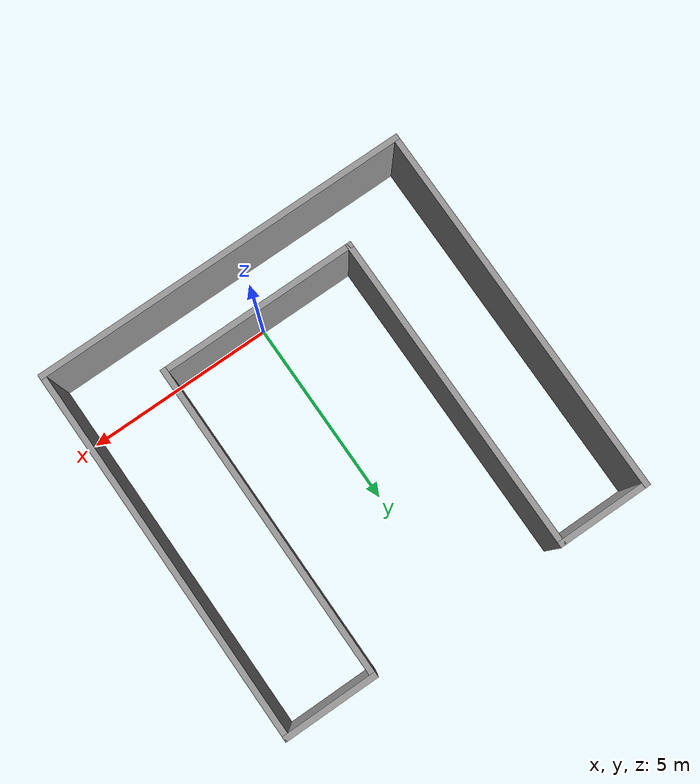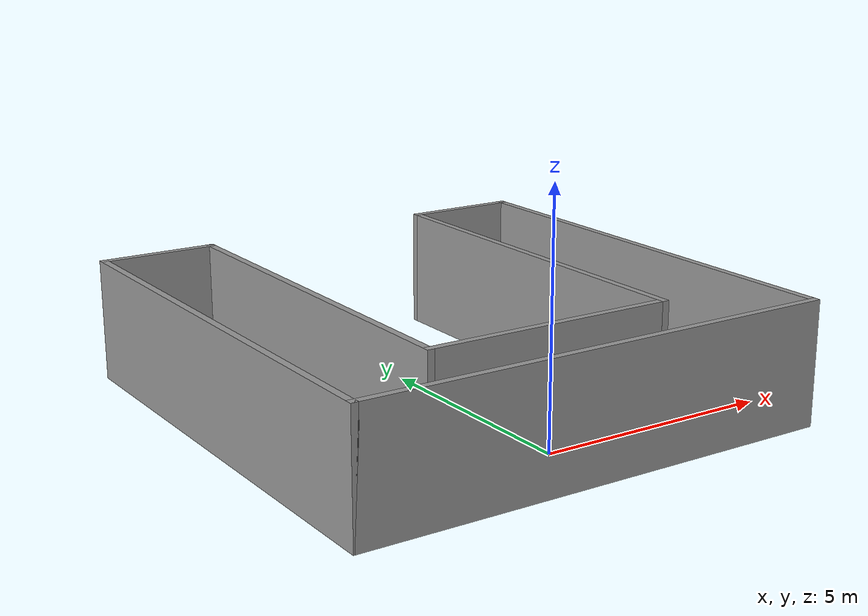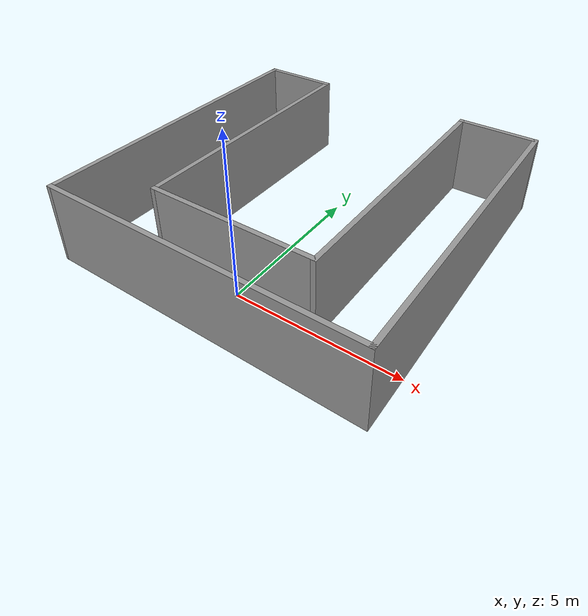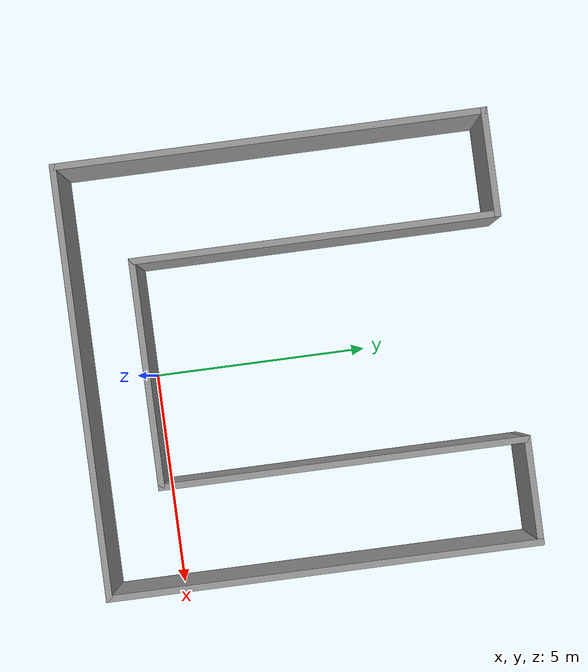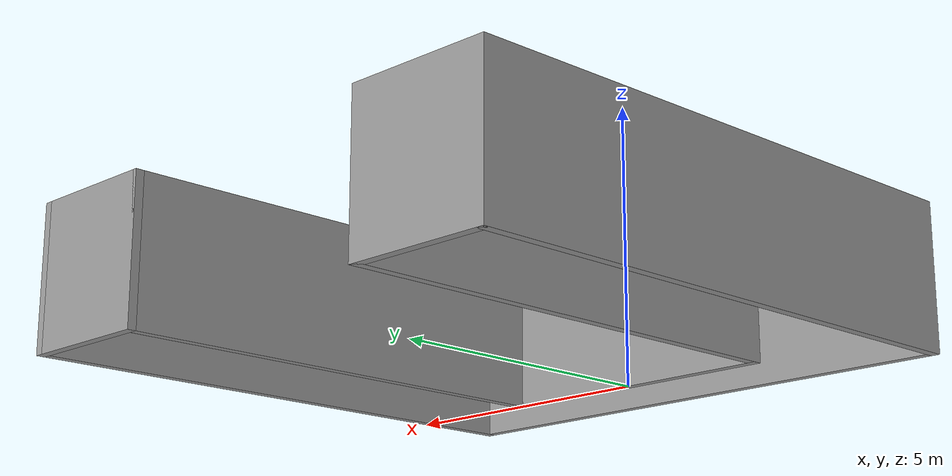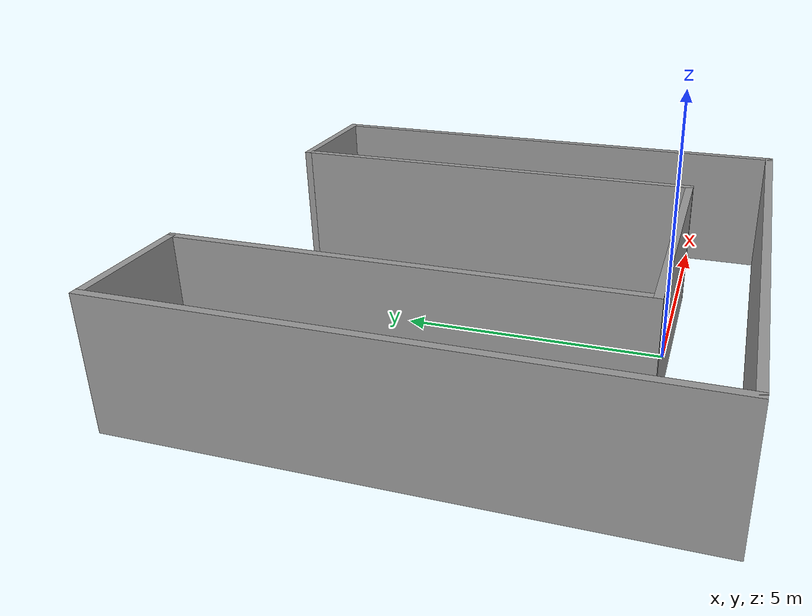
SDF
<?xml version='1.0'?>
<sdf version='1.6'>
  <model name='mybuilding'>
    <pose frame=''>-0.035103 3.37707 0 0 -0 0</pose>
    <link name='Wall_23'>
      <collision name='Wall_23_Collision'>
        <geometry>
          <box>
            <size>10 0.15 2.5</size>
          </box>
        </geometry>
        <pose frame=''>0 0 1.25 0 -0 0</pose>
      </collision>
      <visual name='Wall_23_Visual'>
        <pose frame=''>0 0 1.25 0 -0 0</pose>
        <geometry>
          <box>
            <size>10 0.15 2.5</size>
          </box>
        </geometry>
        <material>
          <script>
            <uri>file://media/materials/scripts/gazebo.material</uri>
            <name>Gazebo/Grey</name>
          </script>
          <ambient>1 1 1 1</ambient>
        </material>
        <meta>
          <layer>0</layer>
        </meta>
      </visual>
      <pose frame=''>-4.9251 6.8e-05 0 0 -0 1.5708</pose>
    </link>
    <link name='Wall_25'>
      <collision name='Wall_25_Collision'>
        <geometry>
          <box>
            <size>10 0.15 2.5</size>
          </box>
        </geometry>
        <pose frame=''>0 0 1.25 0 -0 0</pose>
      </collision>
      <visual name='Wall_25_Visual'>
        <pose frame=''>0 0 1.25 0 -0 0</pose>
        <geometry>
          <box>
            <size>10 0.15 2.5</size>
          </box>
        </geometry>
        <material>
          <script>
            <uri>file://media/materials/scripts/gazebo.material</uri>
            <name>Gazebo/Grey</name>
          </script>
          <ambient>1 1 1 1</ambient>
        </material>
        <meta>
          <layer>0</layer>
        </meta>
      </visual>
      <pose frame=''>0 -4.925 0 0 -0 -1.4e-05</pose>
    </link>
    <link name='Wall_27'>
      <collision name='Wall_27_Collision'>
        <geometry>
          <box>
            <size>10 0.15 2.5</size>
          </box>
        </geometry>
        <pose frame=''>0 0 1.25 0 -0 0</pose>
      </collision>
      <visual name='Wall_27_Visual'>
        <pose frame=''>0 0 1.25 0 -0 0</pose>
        <geometry>
          <box>
            <size>10 0.15 2.5</size>
          </box>
        </geometry>
        <material>
          <script>
            <uri>file://media/materials/scripts/gazebo.material</uri>
            <name>Gazebo/Grey</name>
          </script>
          <ambient>1 1 1 1</ambient>
        </material>
        <meta>
          <layer>0</layer>
        </meta>
      </visual>
      <pose frame=''>4.9251 -6.7e-05 0 0 -0 1.5708</pose>
    </link>
    <link name='Wall_29'>
      <collision name='Wall_29_Collision'>
        <geometry>
          <box>
            <size>2.5 0.15 2.5</size>
          </box>
        </geometry>
        <pose frame=''>0 0 1.25 0 -0 0</pose>
      </collision>
      <visual name='Wall_29_Visual'>
        <pose frame=''>0 0 1.25 0 -0 0</pose>
        <geometry>
          <box>
            <size>2.5 0.15 2.5</size>
          </box>
        </geometry>
        <material>
          <script>
            <uri>file://media/materials/scripts/gazebo.material</uri>
            <name>Gazebo/Grey</name>
          </script>
          <ambient>1 1 1 1</ambient>
        </material>
        <meta>
          <layer>0</layer>
        </meta>
      </visual>
      <pose frame=''>-3.7501 4.92507 0 0 -0 0</pose>
    </link>
    <link name='Wall_31'>
      <collision name='Wall_31_Collision'>
        <geometry>
          <box>
            <size>2.5 0.15 2.5</size>
          </box>
        </geometry>
        <pose frame=''>0 0 1.25 0 -0 0</pose>
      </collision>
      <visual name='Wall_31_Visual'>
        <pose frame=''>0 0 1.25 0 -0 0</pose>
        <geometry>
          <box>
            <size>2.5 0.15 2.5</size>
          </box>
        </geometry>
        <material>
          <script>
            <uri>file://media/materials/scripts/gazebo.material</uri>
            <name>Gazebo/Grey</name>
          </script>
          <ambient>1 1 1 1</ambient>
        </material>
        <meta>
          <layer>0</layer>
        </meta>
      </visual>
      <pose frame=''>3.7501 4.92493 0 0 -0 3.14159</pose>
    </link>
    <link name='Wall_33'>
      <collision name='Wall_33_Collision'>
        <geometry>
          <box>
            <size>8.5 0.15 2.5</size>
          </box>
        </geometry>
        <pose frame=''>0 0 1.25 0 -0 0</pose>
      </collision>
      <visual name='Wall_33_Visual'>
        <pose frame=''>0 0 1.25 0 -0 0</pose>
        <geometry>
          <box>
            <size>8.5 0.15 2.5</size>
          </box>
        </geometry>
        <material>
          <script>
            <uri>file://media/materials/scripts/gazebo.material</uri>
            <name>Gazebo/Grey</name>
          </script>
          <ambient>1 1 1 1</ambient>
        </material>
        <meta>
          <layer>0</layer>
        </meta>
      </visual>
      <pose frame=''>-2.5751 0.750068 0 0 -0 -1.5708</pose>
    </link>
    <link name='Wall_36'>
      <collision name='Wall_36_Collision'>
        <geometry>
          <box>
            <size>8.5 0.15 2.5</size>
          </box>
        </geometry>
        <pose frame=''>0 0 1.25 0 -0 0</pose>
      </collision>
      <visual name='Wall_36_Visual'>
        <pose frame=''>0 0 1.25 0 -0 0</pose>
        <geometry>
          <box>
            <size>8.5 0.15 2.5</size>
          </box>
        </geometry>
        <material>
          <script>
            <uri>file://media/materials/scripts/gazebo.material</uri>
            <name>Gazebo/Grey</name>
          </script>
          <ambient>1 1 1 1</ambient>
        </material>
        <meta>
          <layer>0</layer>
        </meta>
      </visual>
      <pose frame=''>2.5751 0.749933 0 0 -0 -1.5708</pose>
    </link>
    <link name='Wall_38'>
      <collision name='Wall_38_Collision'>
        <geometry>
          <box>
            <size>5.25 0.15 2.5</size>
          </box>
        </geometry>
        <pose frame=''>0 0 1.25 0 -0 0</pose>
      </collision>
      <visual name='Wall_38_Visual'>
        <pose frame=''>0 0 1.25 0 -0 0</pose>
        <geometry>
          <box>
            <size>5.25 0.15 2.5</size>
          </box>
        </geometry>
        <material>
          <script>
            <uri>file://media/materials/scripts/gazebo.material</uri>
            <name>Gazebo/Grey</name>
          </script>
          <ambient>1 1 1 1</ambient>
        </material>
        <meta>
          <layer>0</layer>
        </meta>
      </visual>
      <pose frame=''>-0.025103 -3.42493 0 0 -0 0</pose>
    </link>
    <static>1</static>
  </model>
</sdf>
